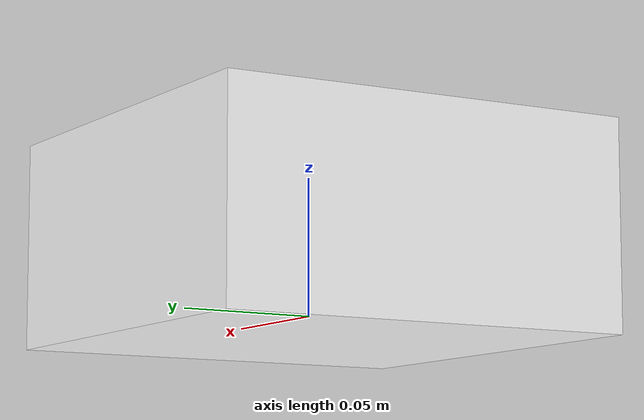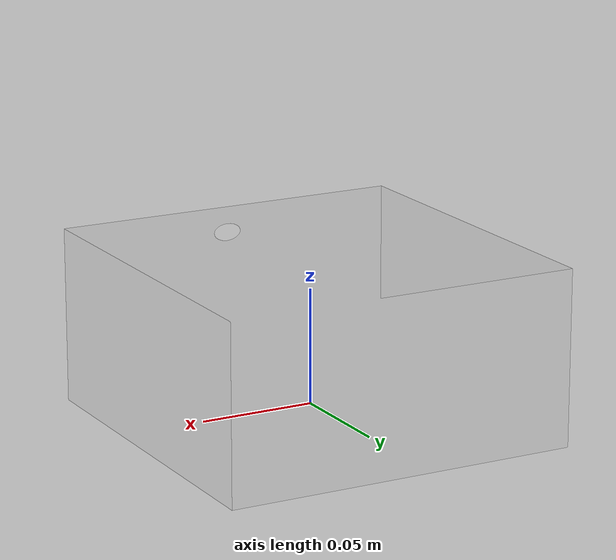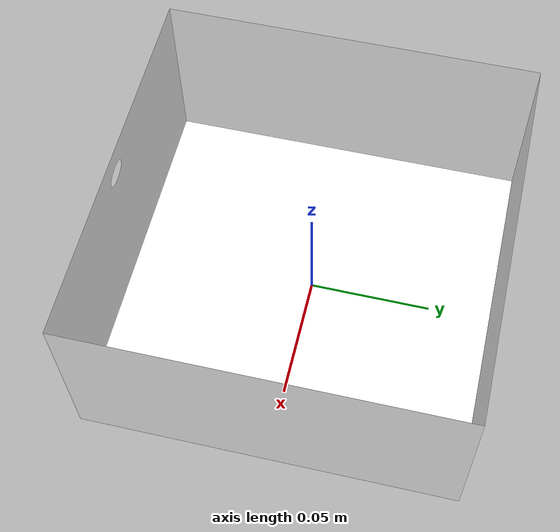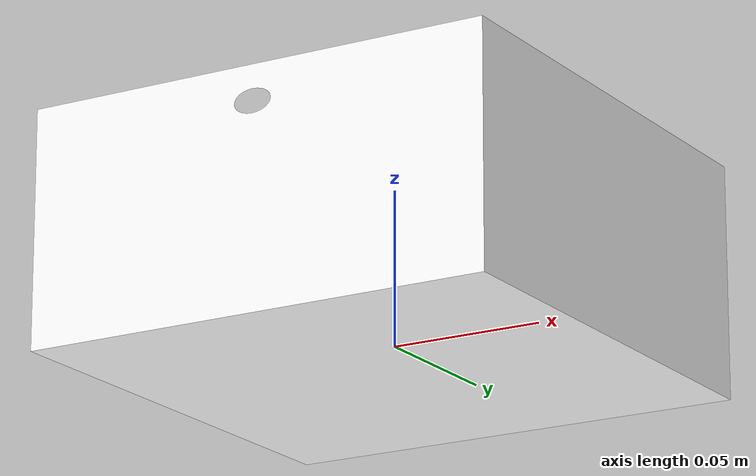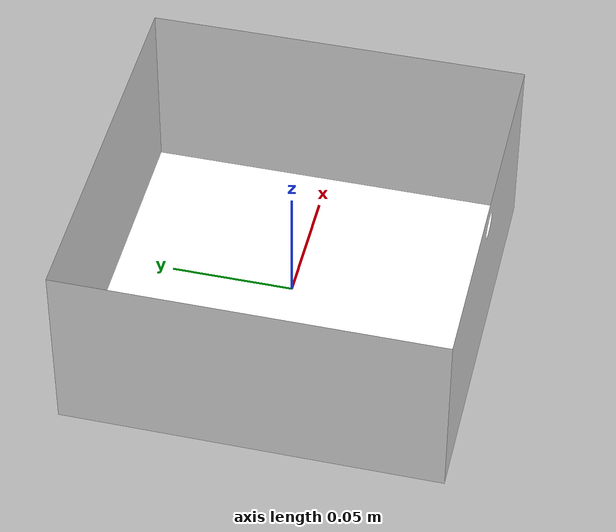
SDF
<?xml version='1.0'?>
<sdf version='1.7'>
  <model name='file_box_2'>
    <link name='link_2'>
      <self_collide>0</self_collide>
      <enable_wind>0</enable_wind>
      <kinematic>0</kinematic>
      <pose>0 0 0 0 -0 0</pose>
      <gravity>1</gravity>
      <inertial>
        <mass>1</mass>
        <pose>0 0 0 0 -0 0</pose>
        <inertia>
          <ixx>1</ixx>
          <ixy>0</ixy>
          <ixz>0</ixz>
          <iyy>1</iyy>
          <iyz>0</iyz>
          <izz>1</izz>
        </inertia>
      </inertial>
      <visual name='visual'>
        <pose>0 0 -0.013583 0 -0 0</pose>
        <geometry>
          <mesh>
            <uri>model://file_box_2/meshes/body.dae</uri>
            <scale>0.5 0.5 0.3</scale>
          </mesh>
        </geometry>
        <material>
          <script>
            <uri>model://file_box_2/materials/scripts</uri>
            <uri>model://file_box_2/materials/textures</uri>
            <name>file_box</name>
          </script>
          <shader type='pixel'>
            <normal_map>__default__</normal_map>
          </shader>
          <ambient>1 1 1 1</ambient>
          <diffuse>1 1 1 1</diffuse>
          <specular>0 0 0 1</specular>
          <emissive>0 0 0 1</emissive>
        </material>
        <cast_shadows>1</cast_shadows>
        <transparency>0</transparency>
      </visual>
      <collision name='collision'>
        <laser_retro>0</laser_retro>
        <max_contacts>10</max_contacts>
        <pose>0 0 0 0 -0 0</pose>
        <geometry>
          <mesh>
            <uri>/home/ros/.gazebo/models/file_box_2/meshes/body.dae</uri>
            <scale>0.5 0.5 0.3</scale>
          </mesh>
        </geometry>
        <surface>
          <friction>
            <ode>
              <mu>1</mu>
              <mu2>1</mu2>
              <fdir1>0 0 0</fdir1>
              <slip1>0</slip1>
              <slip2>0</slip2>
            </ode>
            <torsional>
              <coefficient>1</coefficient>
              <patch_radius>0</patch_radius>
              <surface_radius>0</surface_radius>
              <use_patch_radius>1</use_patch_radius>
              <ode>
                <slip>0</slip>
              </ode>
            </torsional>
          </friction>
          <bounce>
            <restitution_coefficient>0</restitution_coefficient>
            <threshold>1e+06</threshold>
          </bounce>
          <contact>
            <collide_without_contact>0</collide_without_contact>
            <collide_without_contact_bitmask>1</collide_without_contact_bitmask>
            <collide_bitmask>1</collide_bitmask>
            <ode>
              <soft_cfm>0</soft_cfm>
              <soft_erp>0.2</soft_erp>
              <kp>1e+13</kp>
              <kd>1</kd>
              <max_vel>0.01</max_vel>
              <min_depth>0</min_depth>
            </ode>
            <bullet>
              <split_impulse>1</split_impulse>
              <split_impulse_penetration_threshold>-0.01</split_impulse_penetration_threshold>
              <soft_cfm>0</soft_cfm>
              <soft_erp>0.2</soft_erp>
              <kp>1e+13</kp>
              <kd>1</kd>
            </bullet>
          </contact>
        </surface>
      </collision>
    </link>
    <static>1</static>
    <allow_auto_disable>1</allow_auto_disable>
  </model>
</sdf>
